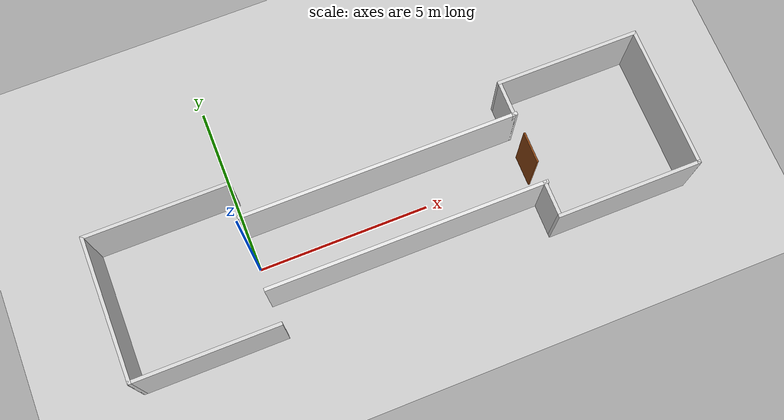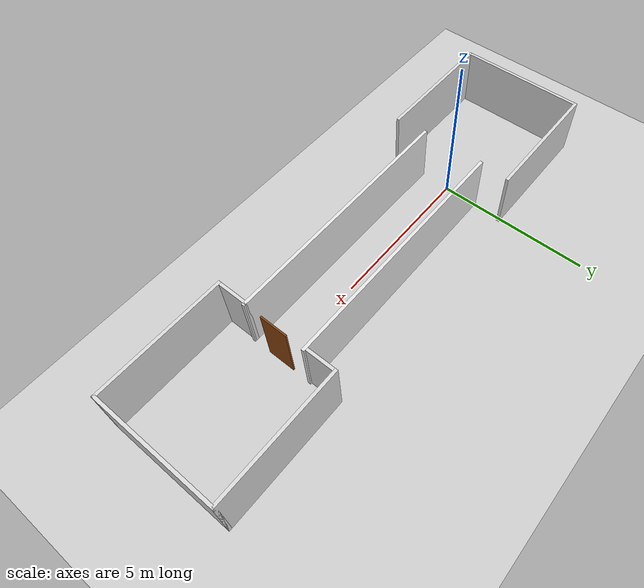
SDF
<?xml version="1.0" ?>
<sdf version="1.6">
  <world name="corridor_two_rooms_door_world">
    <plugin name='gazebo_ros_state' filename='libgazebo_ros_state.so'>
      <ros>
        <namespace>/test</namespace>
        <argument>model_states:=model_states_demo</argument>
      </ros>
      <update_rate>1.0</update_rate>
    </plugin>
    <include>
      <uri>model://sun</uri>
    </include>
    <include>
      <uri>model://ground_plane</uri>
    </include>
    <gui fullscreen='0'>
      <camera name='user_camera'>
        <pose>1.99537 -0.708776 24.473 0 1.4778 0.014675</pose>
        <view_controller>orbit</view_controller>
        <projection_type>perspective</projection_type>
      </camera>
    </gui>

    <physics type='ode'>
      <real_time_update_rate>1000</real_time_update_rate>
      <max_step_size>0.001</max_step_size>
      <real_time_factor>1</real_time_factor>
      <ode>
        <solver>
          <type>quick</type>
          <iters>150</iters>
          <precon_iters>0</precon_iters>
          <sor>1.4</sor>
          <use_dynamic_moi_rescaling>1</use_dynamic_moi_rescaling>
        </solver>
        <constraints>
          <cfm>1e-05</cfm>
          <erp>0.2</erp>
          <contact_max_correcting_vel>2000</contact_max_correcting_vel>
          <contact_surface_layer>0.01</contact_surface_layer>
        </constraints>
      </ode>
    </physics>

    <scene>
      <ambient>0.4 0.4 0.4 1</ambient>
      <background>0.8 0.8 0.8 1</background>
    </scene>

    <!-- Left room outer shell -->
    <model name="left_room_walls">
      <static>true</static>
      <link name="link">
        <!-- north -->
        <collision name="north_collision"><pose>-2  2.05 1 0 0 0</pose><geometry><box><size>4.2 0.1 2</size></box></geometry></collision>
        <visual    name="north_visual"><pose>-2  2.05 1 0 0 0</pose><geometry><box><size>4.2 0.1 2</size></box></geometry><material><ambient>0.85 0.85 0.85 1</ambient><diffuse>0.85 0.85 0.85 1</diffuse></material></visual>
        <!-- south -->
        <collision name="south_collision"><pose>-2 -2.05 1 0 0 0</pose><geometry><box><size>4.2 0.1 2</size></box></geometry></collision>
        <visual    name="south_visual"><pose>-2 -2.05 1 0 0 0</pose><geometry><box><size>4.2 0.1 2</size></box></geometry><material><ambient>0.85 0.85 0.85 1</ambient><diffuse>0.85 0.85 0.85 1</diffuse></material></visual>
        <!-- west -->
        <collision name="west_collision"><pose>-4.05 0 1 0 0 0</pose><geometry><box><size>0.1 4.2 2</size></box></geometry></collision>
        <visual    name="west_visual"><pose>-4.05 0 1 0 0 0</pose><geometry><box><size>0.1 4.2 2</size></box></geometry><material><ambient>0.85 0.85 0.85 1</ambient><diffuse>0.85 0.85 0.85 1</diffuse></material></visual>
      </link>
    </model>

    <!-- Corridor north and south walls -->
    <model name="corridor_walls">
      <static>true</static>
      <link name="link">
        <collision name="north_collision"><pose>4  1.05 1 0 0 0</pose><geometry><box><size>8.1 0.1 2</size></box></geometry></collision>
        <visual    name="north_visual"><pose>4  1.05 1 0 0 0</pose><geometry><box><size>8.1 0.1 2</size></box></geometry><material><ambient>0.9 0.9 0.9 1</ambient><diffuse>0.9 0.9 0.9 1</diffuse></material></visual>

        <collision name="south_collision"><pose>4 -1.05 1 0 0 0</pose><geometry><box><size>8.1 0.1 2</size></box></geometry></collision>
        <visual    name="south_visual"><pose>4 -1.05 1 0 0 0</pose><geometry><box><size>8.1 0.1 2</size></box></geometry><material><ambient>0.9 0.9 0.9 1</ambient><diffuse>0.9 0.9 0.9 1</diffuse></material></visual>
      </link>
    </model>

    <!-- Right room outer shell except the west side, which is split around the door -->
    <model name="right_room_walls">
      <static>true</static>
      <link name="link">
        <!-- north -->
        <collision name="north_collision"><pose>10  2.05 1 0 0 0</pose><geometry><box><size>4.2 0.1 2</size></box></geometry></collision>
        <visual    name="north_visual"><pose>10  2.05 1 0 0 0</pose><geometry><box><size>4.2 0.1 2</size></box></geometry><material><ambient>0.85 0.85 0.85 1</ambient><diffuse>0.85 0.85 0.85 1</diffuse></material></visual>
        <!-- south -->
        <collision name="south_collision"><pose>10 -2.05 1 0 0 0</pose><geometry><box><size>4.2 0.1 2</size></box></geometry></collision>
        <visual    name="south_visual"><pose>10 -2.05 1 0 0 0</pose><geometry><box><size>4.2 0.1 2</size></box></geometry><material><ambient>0.85 0.85 0.85 1</ambient><diffuse>0.85 0.85 0.85 1</diffuse></material></visual>
        <!-- east -->
        <collision name="east_collision"><pose>12.05 0 1 0 0 0</pose><geometry><box><size>0.1 4.2 2</size></box></geometry></collision>
        <visual    name="east_visual"><pose>12.05 0 1 0 0 0</pose><geometry><box><size>0.1 4.2 2</size></box></geometry><material><ambient>0.85 0.85 0.85 1</ambient><diffuse>0.85 0.85 0.85 1</diffuse></material></visual>
        <!-- west wall upper segment -->
        <collision name="west_upper_collision"><pose>7.95 1.5 1 0 0 0</pose><geometry><box><size>0.1 1.0 2</size></box></geometry></collision>
        <visual    name="west_upper_visual"><pose>7.95 1.5 1 0 0 0</pose><geometry><box><size>0.1 1.0 2</size></box></geometry><material><ambient>0.85 0.85 0.85 1</ambient><diffuse>0.85 0.85 0.85 1</diffuse></material></visual>
        <!-- west wall lower segment -->
        <collision name="west_lower_collision"><pose>7.95 -1.5 1 0 0 0</pose><geometry><box><size>0.1 1.0 2</size></box></geometry></collision>
        <visual    name="west_lower_visual"><pose>7.95 -1.5 1 0 0 0</pose><geometry><box><size>0.1 1.0 2</size></box></geometry><material><ambient>0.85 0.85 0.85 1</ambient><diffuse>0.85 0.85 0.85 1</diffuse></material></visual>
      </link>
    </model>

    <!-- Door model. Hinge sits on the room wall at x=8, y=-0.45 -->
    <model name="door">
      <pose>8 -0.45 0 0 0 0</pose>
      <static>false</static>

      <link name="frame">
        <kinematic>true</kinematic>
      </link>

      <link name="panel">
        <pose>0 0 1 0 0 0</pose>
        <inertial>
          <mass>15.0</mass>
          <inertia>
            <ixx>1.0</ixx><iyy>1.0</iyy><izz>1.0</izz>
            <ixy>0</ixy><ixz>0</ixz><iyz>0</iyz>
          </inertia>
        </inertial>
        <collision name="collision">
          <pose>0 0.45 0 0 0 0</pose>
          <geometry><box><size>0.05 0.9 2.0</size></box></geometry>
        </collision>
        <visual name="visual">
          <pose>0 0.45 0 0 0 0</pose>
          <geometry><box><size>0.05 0.9 2.0</size></box></geometry>
          <material><ambient>0.55 0.27 0.07 1</ambient><diffuse>0.55 0.27 0.07 1</diffuse></material>
        </visual>
      </link>

      <joint name="door_hinge" type="revolute">
        <parent>frame</parent>
        <child>panel</child>
        <pose>0 0 1 0 0 0</pose>
        <axis>
          <xyz>0 0 1</xyz>
          <limit>
            <lower>0.0</lower>
            <upper>1.5708</upper>
          </limit>
          <dynamics>
            <damping>2.0</damping>
            <friction>0.2</friction>
          </dynamics>
        </axis>
      </joint>

      <plugin name="proximity_door_controller" filename="libproximity_door_plugin.so">
        <joint_name>door_hinge</joint_name>
        <target_model>agent1</target_model>
        <trigger_distance>1.6</trigger_distance>
        <doorway_x>8.0</doorway_x>
        <doorway_y>0.0</doorway_y>
        <open_angle>1.35</open_angle>
        <closed_angle>0.0</closed_angle>
        <open_speed>1.2</open_speed>
        <close_speed>0.6</close_speed>
        <hold_open_time>1.5</hold_open_time>
      </plugin>
    </model>
  </world>
</sdf>
